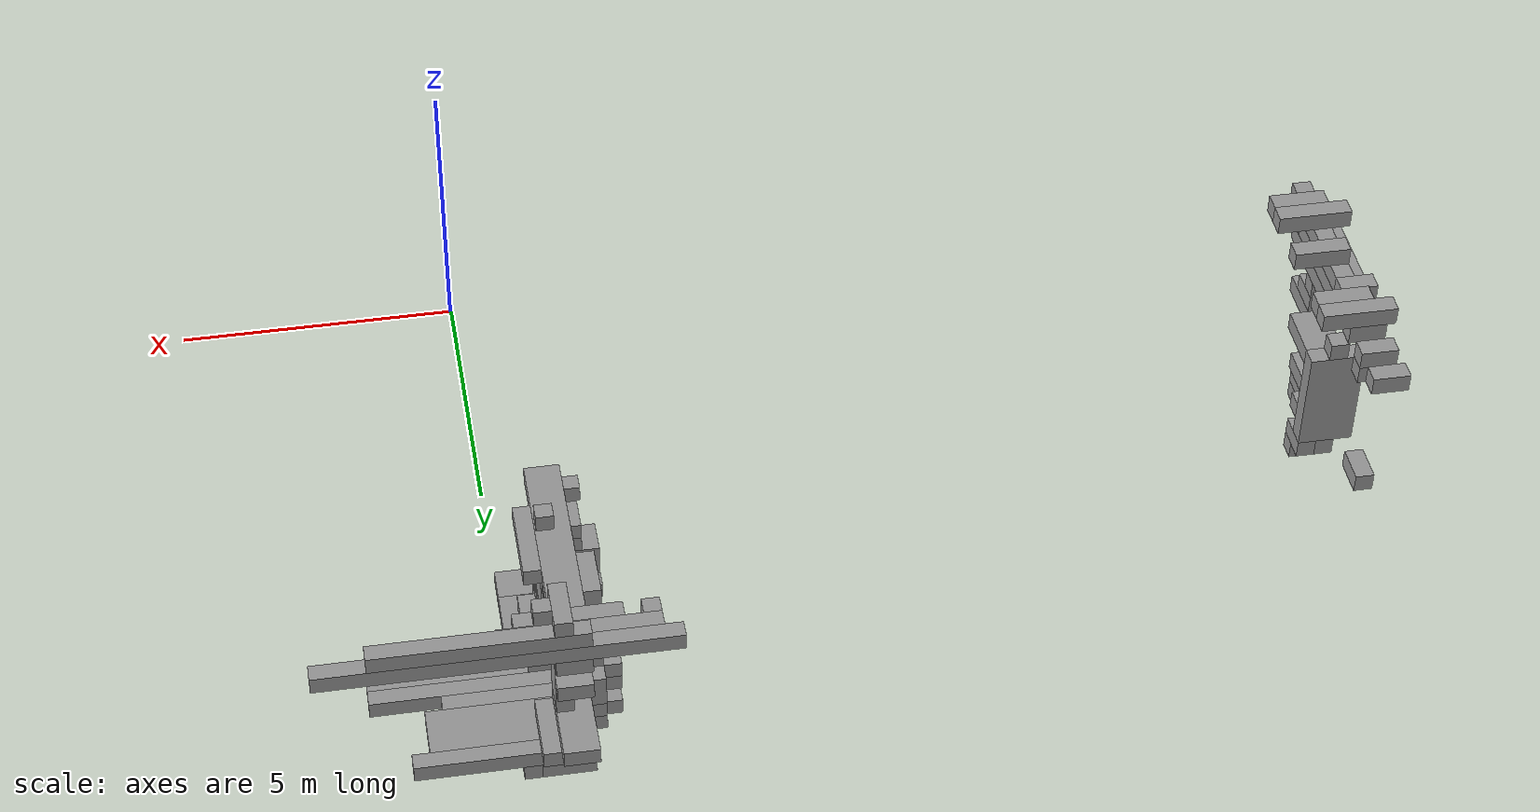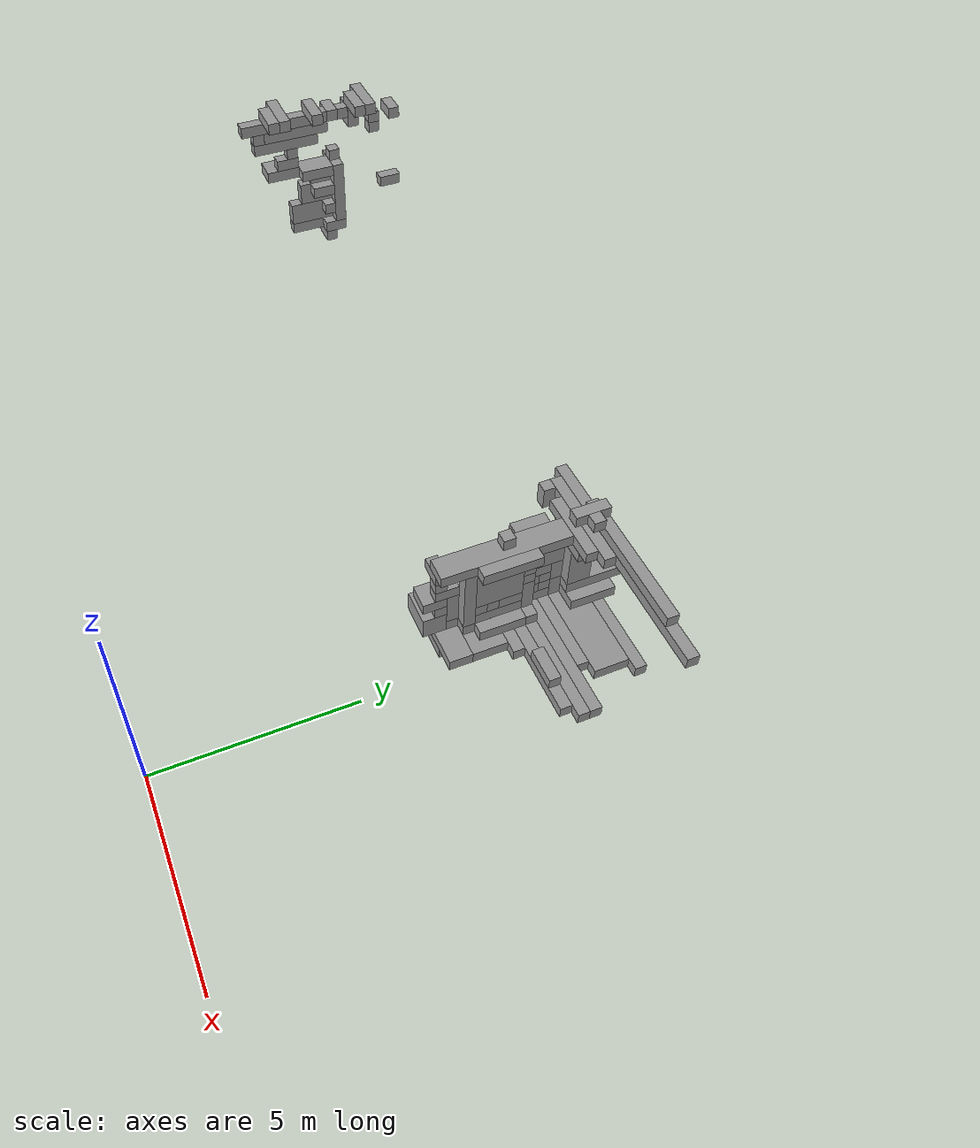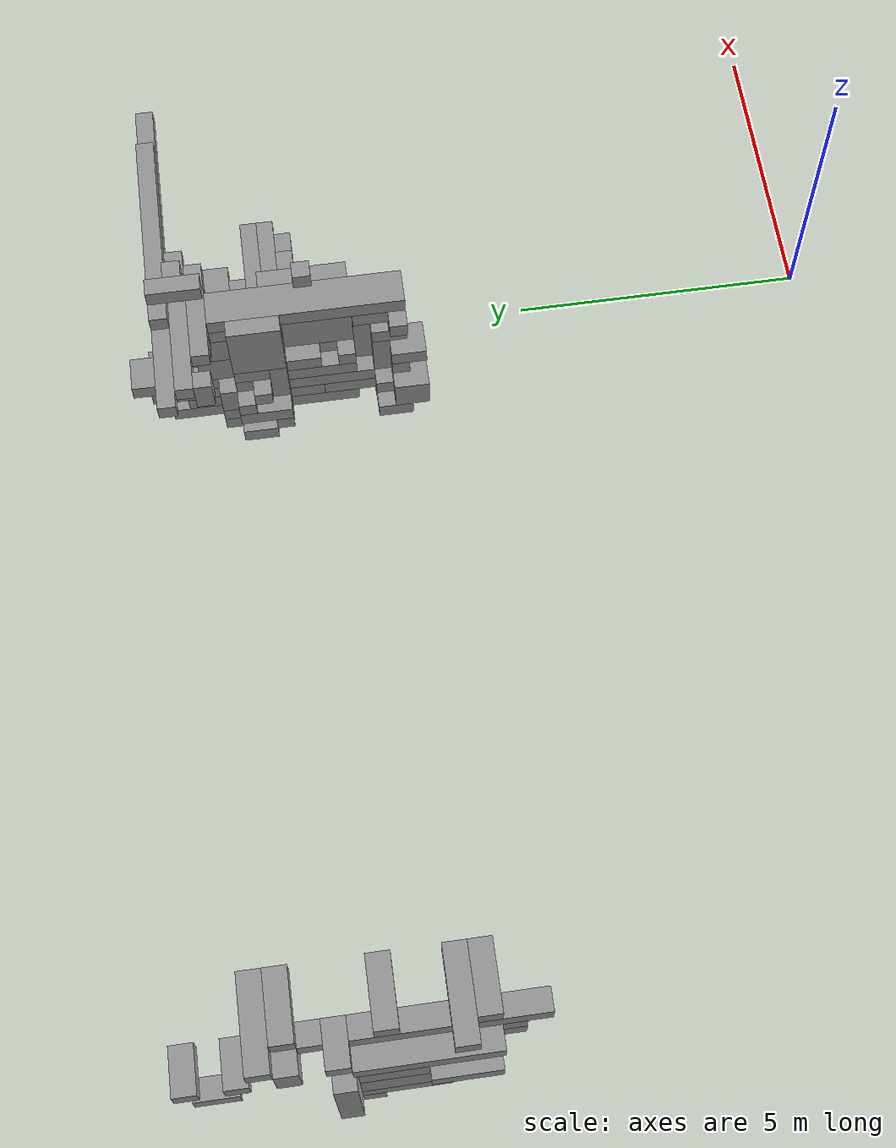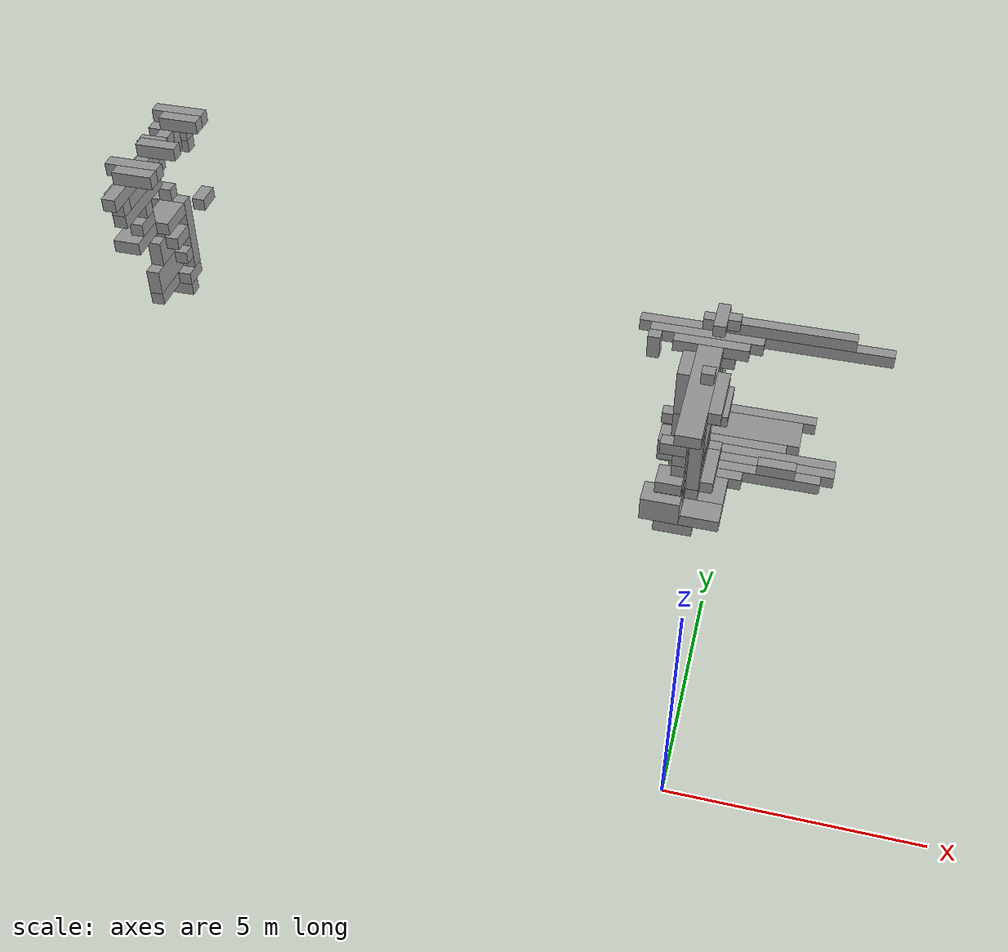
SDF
<sdf version="1.6">
 <world name="bt_world">
  <include><uri>model://sun</uri></include>
  <model name="obstacle_1363">
   <static>true</static>
   <pose>-13.799999999999999 7.949999999999999 5.25 0 0 0</pose>
   <link name="link">
    <collision name="collision">
     <geometry><box><size>0.6 0.8999999999999999 0.3</size></box></geometry>
    </collision>
    <visual name="visual">
     <geometry><box><size>0.6 0.8999999999999999 0.3</size></box></geometry>
     <material><ambient>0.5 0.5 0.5 1</ambient><diffuse>0.6 0.6 0.6 1</diffuse></material>
    </visual>
   </link>
  </model>
  <model name="obstacle_1364">
   <static>true</static>
   <pose>-13.799999999999999 8.4 6.45 0 0 0</pose>
   <link name="link">
    <collision name="collision">
     <geometry><box><size>0.6 1.7999999999999998 0.3</size></box></geometry>
    </collision>
    <visual name="visual">
     <geometry><box><size>0.6 1.7999999999999998 0.3</size></box></geometry>
     <material><ambient>0.5 0.5 0.5 1</ambient><diffuse>0.6 0.6 0.6 1</diffuse></material>
    </visual>
   </link>
  </model>
  <model name="obstacle_1368">
   <static>true</static>
   <pose>-13.5 7.949999999999999 7.05 0 0 0</pose>
   <link name="link">
    <collision name="collision"><geometry><box><size>1.2 0.3 0.3</size></box></geometry></collision>
    <visual name="visual">
     <geometry><box><size>1.2 0.3 0.3</size></box></geometry>
     <material><ambient>0.5 0.5 0.5 1</ambient><diffuse>0.6 0.6 0.6 1</diffuse></material>
    </visual>
   </link>
  </model>
  <model name="obstacle_1370">
   <static>true</static>
   <pose>-13.65 9.45 4.5 0 0 0</pose>
   <link name="link">
    <collision name="collision">
     <geometry><box><size>0.8999999999999999 0.3 1.7999999999999998</size></box></geometry>
    </collision>
    <visual name="visual">
     <geometry><box><size>0.8999999999999999 0.3 1.7999999999999998</size></box></geometry>
     <material><ambient>0.5 0.5 0.5 1</ambient><diffuse>0.6 0.6 0.6 1</diffuse></material>
    </visual>
   </link>
  </model>
  <model name="obstacle_1371">
   <static>true</static>
   <pose>-13.799999999999999 9.45 6.75 0 0 0</pose>
   <link name="link">
    <collision name="collision"><geometry><box><size>0.6 0.3 0.3</size></box></geometry></collision>
    <visual name="visual">
     <geometry><box><size>0.6 0.3 0.3</size></box></geometry>
     <material><ambient>0.5 0.5 0.5 1</ambient><diffuse>0.6 0.6 0.6 1</diffuse></material>
    </visual>
   </link>
  </model>
  <model name="obstacle_1374">
   <static>true</static>
   <pose>-13.799999999999999 10.049999999999999 6.6 0 0 0</pose>
   <link name="link">
    <collision name="collision"><geometry><box><size>0.6 0.3 0.6</size></box></geometry></collision>
    <visual name="visual">
     <geometry><box><size>0.6 0.3 0.6</size></box></geometry>
     <material><ambient>0.5 0.5 0.5 1</ambient><diffuse>0.6 0.6 0.6 1</diffuse></material>
    </visual>
   </link>
  </model>
  <model name="obstacle_1379">
   <static>true</static>
   <pose>-13.5 10.35 7.05 0 0 0</pose>
   <link name="link">
    <collision name="collision"><geometry><box><size>1.2 0.3 0.3</size></box></geometry></collision>
    <visual name="visual">
     <geometry><box><size>1.2 0.3 0.3</size></box></geometry>
     <material><ambient>0.5 0.5 0.5 1</ambient><diffuse>0.6 0.6 0.6 1</diffuse></material>
    </visual>
   </link>
  </model>
  <model name="obstacle_1381">
   <static>true</static>
   <pose>-13.799999999999999 10.65 6.45 0 0 0</pose>
   <link name="link">
    <collision name="collision"><geometry><box><size>0.6 0.3 0.3</size></box></geometry></collision>
    <visual name="visual">
     <geometry><box><size>0.6 0.3 0.3</size></box></geometry>
     <material><ambient>0.5 0.5 0.5 1</ambient><diffuse>0.6 0.6 0.6 1</diffuse></material>
    </visual>
   </link>
  </model>
  <model name="obstacle_1382">
   <static>true</static>
   <pose>-13.799999999999999 11.25 6.45 0 0 0</pose>
   <link name="link">
    <collision name="collision"><geometry><box><size>0.6 0.3 0.3</size></box></geometry></collision>
    <visual name="visual">
     <geometry><box><size>0.6 0.3 0.3</size></box></geometry>
     <material><ambient>0.5 0.5 0.5 1</ambient><diffuse>0.6 0.6 0.6 1</diffuse></material>
    </visual>
   </link>
  </model>
  <model name="obstacle_1455">
   <static>true</static>
   <pose>-13.65 8.1 6.75 0 0 0</pose>
   <link name="link">
    <collision name="collision"><geometry><box><size>0.3 2.4 0.3</size></box></geometry></collision>
    <visual name="visual">
     <geometry><box><size>0.3 2.4 0.3</size></box></geometry>
     <material><ambient>0.5 0.5 0.5 1</ambient><diffuse>0.6 0.6 0.6 1</diffuse></material>
    </visual>
   </link>
  </model>
  <model name="obstacle_1456">
   <static>true</static>
   <pose>-13.65 8.1 6.1499999999999995 0 0 0</pose>
   <link name="link">
    <collision name="collision">
     <geometry><box><size>0.3 1.7999999999999998 0.3</size></box></geometry>
    </collision>
    <visual name="visual">
     <geometry><box><size>0.3 1.7999999999999998 0.3</size></box></geometry>
     <material><ambient>0.5 0.5 0.5 1</ambient><diffuse>0.6 0.6 0.6 1</diffuse></material>
    </visual>
   </link>
  </model>
  <model name="obstacle_1457">
   <static>true</static>
   <pose>-13.65 7.35 6.45 0 0 0</pose>
   <link name="link">
    <collision name="collision"><geometry><box><size>0.3 0.3 0.3</size></box></geometry></collision>
    <visual name="visual">
     <geometry><box><size>0.3 0.3 0.3</size></box></geometry>
     <material><ambient>0.5 0.5 0.5 1</ambient><diffuse>0.6 0.6 0.6 1</diffuse></material>
    </visual>
   </link>
  </model>
  <model name="obstacle_1458">
   <static>true</static>
   <pose>-13.35 7.6499999999999995 7.05 0 0 0</pose>
   <link name="link">
    <collision name="collision">
     <geometry><box><size>0.8999999999999999 0.3 0.3</size></box></geometry>
    </collision>
    <visual name="visual">
     <geometry><box><size>0.8999999999999999 0.3 0.3</size></box></geometry>
     <material><ambient>0.5 0.5 0.5 1</ambient><diffuse>0.6 0.6 0.6 1</diffuse></material>
    </visual>
   </link>
  </model>
  <model name="obstacle_1459">
   <static>true</static>
   <pose>-13.65 8.1 5.55 0 0 0</pose>
   <link name="link">
    <collision name="collision"><geometry><box><size>0.3 0.6 0.3</size></box></geometry></collision>
    <visual name="visual">
     <geometry><box><size>0.3 0.6 0.3</size></box></geometry>
     <material><ambient>0.5 0.5 0.5 1</ambient><diffuse>0.6 0.6 0.6 1</diffuse></material>
    </visual>
   </link>
  </model>
  <model name="obstacle_1460">
   <static>true</static>
   <pose>-13.65 8.85 3.4499999999999997 0 0 0</pose>
   <link name="link">
    <collision name="collision"><geometry><box><size>0.3 1.5 0.3</size></box></geometry></collision>
    <visual name="visual">
     <geometry><box><size>0.3 1.5 0.3</size></box></geometry>
     <material><ambient>0.5 0.5 0.5 1</ambient><diffuse>0.6 0.6 0.6 1</diffuse></material>
    </visual>
   </link>
  </model>
  <model name="obstacle_1461">
   <static>true</static>
   <pose>-13.65 8.7 3.9 0 0 0</pose>
   <link name="link">
    <collision name="collision"><geometry><box><size>0.3 1.2 0.6</size></box></geometry></collision>
    <visual name="visual">
     <geometry><box><size>0.3 1.2 0.6</size></box></geometry>
     <material><ambient>0.5 0.5 0.5 1</ambient><diffuse>0.6 0.6 0.6 1</diffuse></material>
    </visual>
   </link>
  </model>
  <model name="obstacle_1462">
   <static>true</static>
   <pose>-13.65 8.25 5.85 0 0 0</pose>
   <link name="link">
    <collision name="collision"><geometry><box><size>0.3 0.3 0.3</size></box></geometry></collision>
    <visual name="visual">
     <geometry><box><size>0.3 0.3 0.3</size></box></geometry>
     <material><ambient>0.5 0.5 0.5 1</ambient><diffuse>0.6 0.6 0.6 1</diffuse></material>
    </visual>
   </link>
  </model>
  <model name="obstacle_1463">
   <static>true</static>
   <pose>-13.65 8.85 4.5 0 0 0</pose>
   <link name="link">
    <collision name="collision">
     <geometry><box><size>0.3 0.8999999999999999 0.6</size></box></geometry>
    </collision>
    <visual name="visual">
     <geometry><box><size>0.3 0.8999999999999999 0.6</size></box></geometry>
     <material><ambient>0.5 0.5 0.5 1</ambient><diffuse>0.6 0.6 0.6 1</diffuse></material>
    </visual>
   </link>
  </model>
  <model name="obstacle_1464">
   <static>true</static>
   <pose>-13.5 8.85 5.25 0 0 0</pose>
   <link name="link">
    <collision name="collision">
     <geometry><box><size>0.6 0.8999999999999999 0.3</size></box></geometry>
    </collision>
    <visual name="visual">
     <geometry><box><size>0.6 0.8999999999999999 0.3</size></box></geometry>
     <material><ambient>0.5 0.5 0.5 1</ambient><diffuse>0.6 0.6 0.6 1</diffuse></material>
    </visual>
   </link>
  </model>
  <model name="obstacle_1465">
   <static>true</static>
   <pose>-13.65 9.0 4.95 0 0 0</pose>
   <link name="link">
    <collision name="collision"><geometry><box><size>0.3 0.6 0.3</size></box></geometry></collision>
    <visual name="visual">
     <geometry><box><size>0.3 0.6 0.3</size></box></geometry>
     <material><ambient>0.5 0.5 0.5 1</ambient><diffuse>0.6 0.6 0.6 1</diffuse></material>
    </visual>
   </link>
  </model>
  <model name="obstacle_1466">
   <static>true</static>
   <pose>-13.35 8.85 7.05 0 0 0</pose>
   <link name="link">
    <collision name="collision">
     <geometry><box><size>0.8999999999999999 0.3 0.3</size></box></geometry>
    </collision>
    <visual name="visual">
     <geometry><box><size>0.8999999999999999 0.3 0.3</size></box></geometry>
     <material><ambient>0.5 0.5 0.5 1</ambient><diffuse>0.6 0.6 0.6 1</diffuse></material>
    </visual>
   </link>
  </model>
  <model name="obstacle_1467">
   <static>true</static>
   <pose>-13.5 9.15 3.15 0 0 0</pose>
   <link name="link">
    <collision name="collision"><geometry><box><size>0.6 0.3 0.3</size></box></geometry></collision>
    <visual name="visual">
     <geometry><box><size>0.6 0.3 0.3</size></box></geometry>
     <material><ambient>0.5 0.5 0.5 1</ambient><diffuse>0.6 0.6 0.6 1</diffuse></material>
    </visual>
   </link>
  </model>
  <model name="obstacle_1468">
   <static>true</static>
   <pose>-13.65 9.45 5.55 0 0 0</pose>
   <link name="link">
    <collision name="collision"><geometry><box><size>0.3 0.3 0.3</size></box></geometry></collision>
    <visual name="visual">
     <geometry><box><size>0.3 0.3 0.3</size></box></geometry>
     <material><ambient>0.5 0.5 0.5 1</ambient><diffuse>0.6 0.6 0.6 1</diffuse></material>
    </visual>
   </link>
  </model>
  <model name="obstacle_1469">
   <static>true</static>
   <pose>-13.65 9.75 6.75 0 0 0</pose>
   <link name="link">
    <collision name="collision"><geometry><box><size>0.3 0.3 0.3</size></box></geometry></collision>
    <visual name="visual">
     <geometry><box><size>0.3 0.3 0.3</size></box></geometry>
     <material><ambient>0.5 0.5 0.5 1</ambient><diffuse>0.6 0.6 0.6 1</diffuse></material>
    </visual>
   </link>
  </model>
  <model name="obstacle_1470">
   <static>true</static>
   <pose>-13.35 10.049999999999999 7.05 0 0 0</pose>
   <link name="link">
    <collision name="collision">
     <geometry><box><size>0.8999999999999999 0.3 0.3</size></box></geometry>
    </collision>
    <visual name="visual">
     <geometry><box><size>0.8999999999999999 0.3 0.3</size></box></geometry>
     <material><ambient>0.5 0.5 0.5 1</ambient><diffuse>0.6 0.6 0.6 1</diffuse></material>
    </visual>
   </link>
  </model>
  <model name="obstacle_1471">
   <static>true</static>
   <pose>-13.65 10.65 6.1499999999999995 0 0 0</pose>
   <link name="link">
    <collision name="collision"><geometry><box><size>0.3 0.3 0.3</size></box></geometry></collision>
    <visual name="visual">
     <geometry><box><size>0.3 0.3 0.3</size></box></geometry>
     <material><ambient>0.5 0.5 0.5 1</ambient><diffuse>0.6 0.6 0.6 1</diffuse></material>
    </visual>
   </link>
  </model>
  <model name="obstacle_1472">
   <static>true</static>
   <pose>-13.65 11.1 4.35 0 0 0</pose>
   <link name="link">
    <collision name="collision"><geometry><box><size>0.3 0.6 0.3</size></box></geometry></collision>
    <visual name="visual">
     <geometry><box><size>0.3 0.6 0.3</size></box></geometry>
     <material><ambient>0.5 0.5 0.5 1</ambient><diffuse>0.6 0.6 0.6 1</diffuse></material>
    </visual>
   </link>
  </model>
  <model name="obstacle_1512">
   <static>true</static>
   <pose>-13.35 9.0 4.6499999999999995 0 0 0</pose>
   <link name="link">
    <collision name="collision"><geometry><box><size>0.3 0.6 0.3</size></box></geometry></collision>
    <visual name="visual">
     <geometry><box><size>0.3 0.6 0.3</size></box></geometry>
     <material><ambient>0.5 0.5 0.5 1</ambient><diffuse>0.6 0.6 0.6 1</diffuse></material>
    </visual>
   </link>
  </model>
  <model name="obstacle_1513">
   <static>true</static>
   <pose>-13.35 9.299999999999999 3.4499999999999997 0 0 0</pose>
   <link name="link">
    <collision name="collision"><geometry><box><size>0.3 0.6 0.3</size></box></geometry></collision>
    <visual name="visual">
     <geometry><box><size>0.3 0.6 0.3</size></box></geometry>
     <material><ambient>0.5 0.5 0.5 1</ambient><diffuse>0.6 0.6 0.6 1</diffuse></material>
    </visual>
   </link>
  </model>
  <model name="obstacle_1514">
   <static>true</static>
   <pose>-13.35 9.15 4.05 0 0 0</pose>
   <link name="link">
    <collision name="collision"><geometry><box><size>0.3 0.3 0.3</size></box></geometry></collision>
    <visual name="visual">
     <geometry><box><size>0.3 0.3 0.3</size></box></geometry>
     <material><ambient>0.5 0.5 0.5 1</ambient><diffuse>0.6 0.6 0.6 1</diffuse></material>
    </visual>
   </link>
  </model>
  <model name="obstacle_1870">
   <static>true</static>
   <pose>0.3 11.25 2.55 0 0 0</pose>
   <link name="link">
    <collision name="collision"><geometry><box><size>6.0 0.3 0.3</size></box></geometry></collision>
    <visual name="visual">
     <geometry><box><size>6.0 0.3 0.3</size></box></geometry>
     <material><ambient>0.5 0.5 0.5 1</ambient><diffuse>0.6 0.6 0.6 1</diffuse></material>
    </visual>
   </link>
  </model>
  <model name="obstacle_1884">
   <static>true</static>
   <pose>-2.25 10.65 2.4 0 0 0</pose>
   <link name="link">
    <collision name="collision"><geometry><box><size>0.3 0.3 0.6</size></box></geometry></collision>
    <visual name="visual">
     <geometry><box><size>0.3 0.3 0.6</size></box></geometry>
     <material><ambient>0.5 0.5 0.5 1</ambient><diffuse>0.6 0.6 0.6 1</diffuse></material>
    </visual>
   </link>
  </model>
  <model name="obstacle_1885">
   <static>true</static>
   <pose>-1.05 10.95 2.55 0 0 0</pose>
   <link name="link">
    <collision name="collision">
     <geometry><box><size>2.6999999999999997 0.3 0.3</size></box></geometry>
    </collision>
    <visual name="visual">
     <geometry><box><size>2.6999999999999997 0.3 0.3</size></box></geometry>
     <material><ambient>0.5 0.5 0.5 1</ambient><diffuse>0.6 0.6 0.6 1</diffuse></material>
    </visual>
   </link>
  </model>
  <model name="obstacle_1903">
   <static>true</static>
   <pose>-1.3499999999999999 7.199999999999999 0.6 0 0 0</pose>
   <link name="link">
    <collision name="collision">
     <geometry><box><size>0.8999999999999999 0.6 0.6</size></box></geometry>
    </collision>
    <visual name="visual">
     <geometry><box><size>0.8999999999999999 0.6 0.6</size></box></geometry>
     <material><ambient>0.5 0.5 0.5 1</ambient><diffuse>0.6 0.6 0.6 1</diffuse></material>
    </visual>
   </link>
  </model>
  <model name="obstacle_1906">
   <static>true</static>
   <pose>-0.8999999999999999 7.5 0.15 0 0 0</pose>
   <link name="link">
    <collision name="collision">
     <geometry><box><size>1.7999999999999998 0.6 0.3</size></box></geometry>
    </collision>
    <visual name="visual">
     <geometry><box><size>1.7999999999999998 0.6 0.3</size></box></geometry>
     <material><ambient>0.5 0.5 0.5 1</ambient><diffuse>0.6 0.6 0.6 1</diffuse></material>
    </visual>
   </link>
  </model>
  <model name="obstacle_1907">
   <static>true</static>
   <pose>0.3 9.45 0.15 0 0 0</pose>
   <link name="link">
    <collision name="collision"><geometry><box><size>4.2 0.3 0.3</size></box></geometry></collision>
    <visual name="visual">
     <geometry><box><size>4.2 0.3 0.3</size></box></geometry>
     <material><ambient>0.5 0.5 0.5 1</ambient><diffuse>0.6 0.6 0.6 1</diffuse></material>
    </visual>
   </link>
  </model>
  <model name="obstacle_1908">
   <static>true</static>
   <pose>-1.5 9.75 0.44999999999999996 0 0 0</pose>
   <link name="link">
    <collision name="collision">
     <geometry><box><size>0.6 0.8999999999999999 0.3</size></box></geometry>
    </collision>
    <visual name="visual">
     <geometry><box><size>0.6 0.8999999999999999 0.3</size></box></geometry>
     <material><ambient>0.5 0.5 0.5 1</ambient><diffuse>0.6 0.6 0.6 1</diffuse></material>
    </visual>
   </link>
  </model>
  <model name="obstacle_1909">
   <static>true</static>
   <pose>-1.05 9.9 -0.15 0 0 0</pose>
   <link name="link">
    <collision name="collision"><geometry><box><size>1.5 0.6 0.3</size></box></geometry></collision>
    <visual name="visual">
     <geometry><box><size>1.5 0.6 0.3</size></box></geometry>
     <material><ambient>0.5 0.5 0.5 1</ambient><diffuse>0.6 0.6 0.6 1</diffuse></material>
    </visual>
   </link>
  </model>
  <model name="obstacle_1910">
   <static>true</static>
   <pose>-1.3499999999999999 9.75 1.05 0 0 0</pose>
   <link name="link">
    <collision name="collision">
     <geometry><box><size>0.8999999999999999 0.3 0.3</size></box></geometry>
    </collision>
    <visual name="visual">
     <geometry><box><size>0.8999999999999999 0.3 0.3</size></box></geometry>
     <material><ambient>0.5 0.5 0.5 1</ambient><diffuse>0.6 0.6 0.6 1</diffuse></material>
    </visual>
   </link>
  </model>
  <model name="obstacle_1911">
   <static>true</static>
   <pose>-1.3499999999999999 10.049999999999999 0.75 0 0 0</pose>
   <link name="link">
    <collision name="collision">
     <geometry><box><size>0.8999999999999999 0.3 0.3</size></box></geometry>
    </collision>
    <visual name="visual">
     <geometry><box><size>0.8999999999999999 0.3 0.3</size></box></geometry>
     <material><ambient>0.5 0.5 0.5 1</ambient><diffuse>0.6 0.6 0.6 1</diffuse></material>
    </visual>
   </link>
  </model>
  <model name="obstacle_1912">
   <static>true</static>
   <pose>-0.8999999999999999 10.65 2.55 0 0 0</pose>
   <link name="link">
    <collision name="collision">
     <geometry><box><size>1.7999999999999998 0.3 0.3</size></box></geometry>
    </collision>
    <visual name="visual">
     <geometry><box><size>1.7999999999999998 0.3 0.3</size></box></geometry>
     <material><ambient>0.5 0.5 0.5 1</ambient><diffuse>0.6 0.6 0.6 1</diffuse></material>
    </visual>
   </link>
  </model>
  <model name="obstacle_1940">
   <static>true</static>
   <pose>-1.2 7.199999999999999 1.3499999999999999 0 0 0</pose>
   <link name="link">
    <collision name="collision"><geometry><box><size>0.6 0.6 0.3</size></box></geometry></collision>
    <visual name="visual">
     <geometry><box><size>0.6 0.6 0.3</size></box></geometry>
     <material><ambient>0.5 0.5 0.5 1</ambient><diffuse>0.6 0.6 0.6 1</diffuse></material>
    </visual>
   </link>
  </model>
  <model name="obstacle_1944">
   <static>true</static>
   <pose>-1.05 7.35 -0.15 0 0 0</pose>
   <link name="link">
    <collision name="collision">
     <geometry><box><size>0.8999999999999999 0.3 0.3</size></box></geometry>
    </collision>
    <visual name="visual">
     <geometry><box><size>0.8999999999999999 0.3 0.3</size></box></geometry>
     <material><ambient>0.5 0.5 0.5 1</ambient><diffuse>0.6 0.6 0.6 1</diffuse></material>
    </visual>
   </link>
  </model>
  <model name="obstacle_1945">
   <static>true</static>
   <pose>-1.2 7.35 1.05 0 0 0</pose>
   <link name="link">
    <collision name="collision"><geometry><box><size>0.6 0.3 0.3</size></box></geometry></collision>
    <visual name="visual">
     <geometry><box><size>0.6 0.3 0.3</size></box></geometry>
     <material><ambient>0.5 0.5 0.5 1</ambient><diffuse>0.6 0.6 0.6 1</diffuse></material>
    </visual>
   </link>
  </model>
  <model name="obstacle_1946">
   <static>true</static>
   <pose>-1.2 7.35 2.25 0 0 0</pose>
   <link name="link">
    <collision name="collision"><geometry><box><size>0.6 0.3 0.3</size></box></geometry></collision>
    <visual name="visual">
     <geometry><box><size>0.6 0.3 0.3</size></box></geometry>
     <material><ambient>0.5 0.5 0.5 1</ambient><diffuse>0.6 0.6 0.6 1</diffuse></material>
    </visual>
   </link>
  </model>
  <model name="obstacle_1947">
   <static>true</static>
   <pose>-1.2 7.6499999999999995 0.44999999999999996 0 0 0</pose>
   <link name="link">
    <collision name="collision"><geometry><box><size>0.6 0.3 0.3</size></box></geometry></collision>
    <visual name="visual">
     <geometry><box><size>0.6 0.3 0.3</size></box></geometry>
     <material><ambient>0.5 0.5 0.5 1</ambient><diffuse>0.6 0.6 0.6 1</diffuse></material>
    </visual>
   </link>
  </model>
  <model name="obstacle_1948">
   <static>true</static>
   <pose>-0.75 9.45 -0.15 0 0 0</pose>
   <link name="link">
    <collision name="collision"><geometry><box><size>1.5 0.3 0.3</size></box></geometry></collision>
    <visual name="visual">
     <geometry><box><size>1.5 0.3 0.3</size></box></geometry>
     <material><ambient>0.5 0.5 0.5 1</ambient><diffuse>0.6 0.6 0.6 1</diffuse></material>
    </visual>
   </link>
  </model>
  <model name="obstacle_1949">
   <static>true</static>
   <pose>-1.05 9.45 1.05 0 0 0</pose>
   <link name="link">
    <collision name="collision">
     <geometry><box><size>0.8999999999999999 0.3 0.8999999999999999</size></box></geometry>
    </collision>
    <visual name="visual">
     <geometry><box><size>0.8999999999999999 0.3 0.8999999999999999</size></box></geometry>
     <material><ambient>0.5 0.5 0.5 1</ambient><diffuse>0.6 0.6 0.6 1</diffuse></material>
    </visual>
   </link>
  </model>
  <model name="obstacle_1950">
   <static>true</static>
   <pose>-1.3499999999999999 9.75 2.1 0 0 0</pose>
   <link name="link">
    <collision name="collision">
     <geometry><box><size>0.3 0.8999999999999999 1.2</size></box></geometry>
    </collision>
    <visual name="visual">
     <geometry><box><size>0.3 0.8999999999999999 1.2</size></box></geometry>
     <material><ambient>0.5 0.5 0.5 1</ambient><diffuse>0.6 0.6 0.6 1</diffuse></material>
    </visual>
   </link>
  </model>
  <model name="obstacle_1951">
   <static>true</static>
   <pose>0.44999999999999996 9.75 0.15 0 0 0</pose>
   <link name="link">
    <collision name="collision"><geometry><box><size>3.9 0.3 0.3</size></box></geometry></collision>
    <visual name="visual">
     <geometry><box><size>3.9 0.3 0.3</size></box></geometry>
     <material><ambient>0.5 0.5 0.5 1</ambient><diffuse>0.6 0.6 0.6 1</diffuse></material>
    </visual>
   </link>
  </model>
  <model name="obstacle_1952">
   <static>true</static>
   <pose>-1.2 9.75 0.75 0 0 0</pose>
   <link name="link">
    <collision name="collision"><geometry><box><size>0.6 0.3 0.3</size></box></geometry></collision>
    <visual name="visual">
     <geometry><box><size>0.6 0.3 0.3</size></box></geometry>
     <material><ambient>0.5 0.5 0.5 1</ambient><diffuse>0.6 0.6 0.6 1</diffuse></material>
    </visual>
   </link>
  </model>
  <model name="obstacle_1953">
   <static>true</static>
   <pose>-1.2 9.9 1.3499999999999999 0 0 0</pose>
   <link name="link">
    <collision name="collision"><geometry><box><size>0.6 0.6 0.3</size></box></geometry></collision>
    <visual name="visual">
     <geometry><box><size>0.6 0.6 0.3</size></box></geometry>
     <material><ambient>0.5 0.5 0.5 1</ambient><diffuse>0.6 0.6 0.6 1</diffuse></material>
    </visual>
   </link>
  </model>
  <model name="obstacle_1954">
   <static>true</static>
   <pose>-1.3499999999999999 10.2 0.15 0 0 0</pose>
   <link name="link">
    <collision name="collision"><geometry><box><size>0.3 0.6 0.3</size></box></geometry></collision>
    <visual name="visual">
     <geometry><box><size>0.3 0.6 0.3</size></box></geometry>
     <material><ambient>0.5 0.5 0.5 1</ambient><diffuse>0.6 0.6 0.6 1</diffuse></material>
    </visual>
   </link>
  </model>
  <model name="obstacle_1955">
   <static>true</static>
   <pose>-1.2 10.049999999999999 1.05 0 0 0</pose>
   <link name="link">
    <collision name="collision"><geometry><box><size>0.6 0.3 0.3</size></box></geometry></collision>
    <visual name="visual">
     <geometry><box><size>0.6 0.3 0.3</size></box></geometry>
     <material><ambient>0.5 0.5 0.5 1</ambient><diffuse>0.6 0.6 0.6 1</diffuse></material>
    </visual>
   </link>
  </model>
  <model name="obstacle_1956">
   <static>true</static>
   <pose>-0.8999999999999999 10.35 -0.15 0 0 0</pose>
   <link name="link">
    <collision name="collision"><geometry><box><size>1.2 0.3 0.3</size></box></geometry></collision>
    <visual name="visual">
     <geometry><box><size>1.2 0.3 0.3</size></box></geometry>
     <material><ambient>0.5 0.5 0.5 1</ambient><diffuse>0.6 0.6 0.6 1</diffuse></material>
    </visual>
   </link>
  </model>
  <model name="obstacle_1957">
   <static>true</static>
   <pose>-1.2 10.35 0.6 0 0 0</pose>
   <link name="link">
    <collision name="collision"><geometry><box><size>0.6 0.3 0.6</size></box></geometry></collision>
    <visual name="visual">
     <geometry><box><size>0.6 0.3 0.6</size></box></geometry>
     <material><ambient>0.5 0.5 0.5 1</ambient><diffuse>0.6 0.6 0.6 1</diffuse></material>
    </visual>
   </link>
  </model>
  <model name="obstacle_1958">
   <static>true</static>
   <pose>-0.8999999999999999 10.65 2.25 0 0 0</pose>
   <link name="link">
    <collision name="collision"><geometry><box><size>1.2 0.3 0.3</size></box></geometry></collision>
    <visual name="visual">
     <geometry><box><size>1.2 0.3 0.3</size></box></geometry>
     <material><ambient>0.5 0.5 0.5 1</ambient><diffuse>0.6 0.6 0.6 1</diffuse></material>
    </visual>
   </link>
  </model>
  <model name="obstacle_2007">
   <static>true</static>
   <pose>-1.05 7.5 1.65 0 0 0</pose>
   <link name="link">
    <collision name="collision"><geometry><box><size>0.3 0.6 0.3</size></box></geometry></collision>
    <visual name="visual">
     <geometry><box><size>0.3 0.6 0.3</size></box></geometry>
     <material><ambient>0.5 0.5 0.5 1</ambient><diffuse>0.6 0.6 0.6 1</diffuse></material>
    </visual>
   </link>
  </model>
  <model name="obstacle_2008">
   <static>true</static>
   <pose>-1.05 7.35 1.95 0 0 0</pose>
   <link name="link">
    <collision name="collision"><geometry><box><size>0.3 0.3 0.3</size></box></geometry></collision>
    <visual name="visual">
     <geometry><box><size>0.3 0.3 0.3</size></box></geometry>
     <material><ambient>0.5 0.5 0.5 1</ambient><diffuse>0.6 0.6 0.6 1</diffuse></material>
    </visual>
   </link>
  </model>
  <model name="obstacle_2009">
   <static>true</static>
   <pose>-0.8999999999999999 8.85 2.55 0 0 0</pose>
   <link name="link">
    <collision name="collision"><geometry><box><size>0.6 3.3 0.3</size></box></geometry></collision>
    <visual name="visual">
     <geometry><box><size>0.6 3.3 0.3</size></box></geometry>
     <material><ambient>0.5 0.5 0.5 1</ambient><diffuse>0.6 0.6 0.6 1</diffuse></material>
    </visual>
   </link>
  </model>
  <model name="obstacle_2010">
   <static>true</static>
   <pose>-1.05 7.6499999999999995 -0.15 0 0 0</pose>
   <link name="link">
    <collision name="collision"><geometry><box><size>0.3 0.3 0.3</size></box></geometry></collision>
    <visual name="visual">
     <geometry><box><size>0.3 0.3 0.3</size></box></geometry>
     <material><ambient>0.5 0.5 0.5 1</ambient><diffuse>0.6 0.6 0.6 1</diffuse></material>
    </visual>
   </link>
  </model>
  <model name="obstacle_2011">
   <static>true</static>
   <pose>-1.05 7.6499999999999995 1.05 0 0 0</pose>
   <link name="link">
    <collision name="collision">
     <geometry><box><size>0.3 0.3 0.8999999999999999</size></box></geometry>
    </collision>
    <visual name="visual">
     <geometry><box><size>0.3 0.3 0.8999999999999999</size></box></geometry>
     <material><ambient>0.5 0.5 0.5 1</ambient><diffuse>0.6 0.6 0.6 1</diffuse></material>
    </visual>
   </link>
  </model>
  <model name="obstacle_2012">
   <static>true</static>
   <pose>-1.05 7.8 2.25 0 0 0</pose>
   <link name="link">
    <collision name="collision"><geometry><box><size>0.3 0.6 0.3</size></box></geometry></collision>
    <visual name="visual">
     <geometry><box><size>0.3 0.6 0.3</size></box></geometry>
     <material><ambient>0.5 0.5 0.5 1</ambient><diffuse>0.6 0.6 0.6 1</diffuse></material>
    </visual>
   </link>
  </model>
  <model name="obstacle_2013">
   <static>true</static>
   <pose>-0.6 8.25 0.15 0 0 0</pose>
   <link name="link">
    <collision name="collision">
     <geometry><box><size>1.2 0.8999999999999999 0.3</size></box></geometry>
    </collision>
    <visual name="visual">
     <geometry><box><size>1.2 0.8999999999999999 0.3</size></box></geometry>
     <material><ambient>0.5 0.5 0.5 1</ambient><diffuse>0.6 0.6 0.6 1</diffuse></material>
    </visual>
   </link>
  </model>
  <model name="obstacle_2014">
   <static>true</static>
   <pose>-0.8999999999999999 8.549999999999999 0.44999999999999996 0 0 0</pose>
   <link name="link">
    <collision name="collision"><geometry><box><size>0.6 1.5 0.3</size></box></geometry></collision>
    <visual name="visual">
     <geometry><box><size>0.6 1.5 0.3</size></box></geometry>
     <material><ambient>0.5 0.5 0.5 1</ambient><diffuse>0.6 0.6 0.6 1</diffuse></material>
    </visual>
   </link>
  </model>
  <model name="obstacle_2015">
   <static>true</static>
   <pose>-0.75 8.7 -0.15 0 0 0</pose>
   <link name="link">
    <collision name="collision">
     <geometry><box><size>0.8999999999999999 1.2 0.3</size></box></geometry>
    </collision>
    <visual name="visual">
     <geometry><box><size>0.8999999999999999 1.2 0.3</size></box></geometry>
     <material><ambient>0.5 0.5 0.5 1</ambient><diffuse>0.6 0.6 0.6 1</diffuse></material>
    </visual>
   </link>
  </model>
  <model name="obstacle_2016">
   <static>true</static>
   <pose>-0.8999999999999999 8.7 0.75 0 0 0</pose>
   <link name="link">
    <collision name="collision"><geometry><box><size>0.6 1.2 0.3</size></box></geometry></collision>
    <visual name="visual">
     <geometry><box><size>0.6 1.2 0.3</size></box></geometry>
     <material><ambient>0.5 0.5 0.5 1</ambient><diffuse>0.6 0.6 0.6 1</diffuse></material>
    </visual>
   </link>
  </model>
  <model name="obstacle_2017">
   <static>true</static>
   <pose>-0.8999999999999999 8.25 1.05 0 0 0</pose>
   <link name="link">
    <collision name="collision"><geometry><box><size>0.6 0.3 0.3</size></box></geometry></collision>
    <visual name="visual">
     <geometry><box><size>0.6 0.3 0.3</size></box></geometry>
     <material><ambient>0.5 0.5 0.5 1</ambient><diffuse>0.6 0.6 0.6 1</diffuse></material>
    </visual>
   </link>
  </model>
  <model name="obstacle_2018">
   <static>true</static>
   <pose>-1.05 9.0 0.15 0 0 0</pose>
   <link name="link">
    <collision name="collision"><geometry><box><size>0.3 0.6 0.3</size></box></geometry></collision>
    <visual name="visual">
     <geometry><box><size>0.3 0.6 0.3</size></box></geometry>
     <material><ambient>0.5 0.5 0.5 1</ambient><diffuse>0.6 0.6 0.6 1</diffuse></material>
    </visual>
   </link>
  </model>
  <model name="obstacle_2019">
   <static>true</static>
   <pose>-0.8999999999999999 9.0 1.05 0 0 0</pose>
   <link name="link">
    <collision name="collision"><geometry><box><size>0.6 0.6 0.3</size></box></geometry></collision>
    <visual name="visual">
     <geometry><box><size>0.6 0.6 0.3</size></box></geometry>
     <material><ambient>0.5 0.5 0.5 1</ambient><diffuse>0.6 0.6 0.6 1</diffuse></material>
    </visual>
   </link>
  </model>
  <model name="obstacle_2020">
   <static>true</static>
   <pose>-0.8999999999999999 9.45 2.1 0 0 0</pose>
   <link name="link">
    <collision name="collision"><geometry><box><size>0.6 0.3 0.6</size></box></geometry></collision>
    <visual name="visual">
     <geometry><box><size>0.6 0.3 0.6</size></box></geometry>
     <material><ambient>0.5 0.5 0.5 1</ambient><diffuse>0.6 0.6 0.6 1</diffuse></material>
    </visual>
   </link>
  </model>
  <model name="obstacle_2021">
   <static>true</static>
   <pose>-1.05 9.9 0.44999999999999996 0 0 0</pose>
   <link name="link">
    <collision name="collision"><geometry><box><size>0.3 0.6 0.3</size></box></geometry></collision>
    <visual name="visual">
     <geometry><box><size>0.3 0.6 0.3</size></box></geometry>
     <material><ambient>0.5 0.5 0.5 1</ambient><diffuse>0.6 0.6 0.6 1</diffuse></material>
    </visual>
   </link>
  </model>
  <model name="obstacle_2022">
   <static>true</static>
   <pose>-1.05 10.2 1.7999999999999998 0 0 0</pose>
   <link name="link">
    <collision name="collision"><geometry><box><size>0.3 1.2 0.6</size></box></geometry></collision>
    <visual name="visual">
     <geometry><box><size>0.3 1.2 0.6</size></box></geometry>
     <material><ambient>0.5 0.5 0.5 1</ambient><diffuse>0.6 0.6 0.6 1</diffuse></material>
    </visual>
   </link>
  </model>
  <model name="obstacle_2023">
   <static>true</static>
   <pose>-1.05 10.049999999999999 2.25 0 0 0</pose>
   <link name="link">
    <collision name="collision">
     <geometry><box><size>0.3 0.8999999999999999 0.3</size></box></geometry>
    </collision>
    <visual name="visual">
     <geometry><box><size>0.3 0.8999999999999999 0.3</size></box></geometry>
     <material><ambient>0.5 0.5 0.5 1</ambient><diffuse>0.6 0.6 0.6 1</diffuse></material>
    </visual>
   </link>
  </model>
  <model name="obstacle_2024">
   <static>true</static>
   <pose>0.15 10.65 0.15 0 0 0</pose>
   <link name="link">
    <collision name="collision">
     <geometry><box><size>2.6999999999999997 0.8999999999999999 0.3</size></box></geometry>
    </collision>
    <visual name="visual">
     <geometry><box><size>2.6999999999999997 0.8999999999999999 0.3</size></box></geometry>
     <material><ambient>0.5 0.5 0.5 1</ambient><diffuse>0.6 0.6 0.6 1</diffuse></material>
    </visual>
   </link>
  </model>
  <model name="obstacle_2025">
   <static>true</static>
   <pose>-1.05 10.5 1.2 0 0 0</pose>
   <link name="link">
    <collision name="collision"><geometry><box><size>0.3 0.6 0.6</size></box></geometry></collision>
    <visual name="visual">
     <geometry><box><size>0.3 0.6 0.6</size></box></geometry>
     <material><ambient>0.5 0.5 0.5 1</ambient><diffuse>0.6 0.6 0.6 1</diffuse></material>
    </visual>
   </link>
  </model>
  <model name="obstacle_2026">
   <static>true</static>
   <pose>-0.75 10.95 -0.15 0 0 0</pose>
   <link name="link">
    <collision name="collision">
     <geometry><box><size>0.8999999999999999 0.8999999999999999 0.3</size></box></geometry>
    </collision>
    <visual name="visual">
     <geometry><box><size>0.8999999999999999 0.8999999999999999 0.3</size></box></geometry>
     <material><ambient>0.5 0.5 0.5 1</ambient><diffuse>0.6 0.6 0.6 1</diffuse></material>
    </visual>
   </link>
  </model>
  <model name="obstacle_2027">
   <static>true</static>
   <pose>-0.75 11.1 0.44999999999999996 0 0 0</pose>
   <link name="link">
    <collision name="collision">
     <geometry><box><size>0.8999999999999999 1.2 0.3</size></box></geometry>
    </collision>
    <visual name="visual">
     <geometry><box><size>0.8999999999999999 1.2 0.3</size></box></geometry>
     <material><ambient>0.5 0.5 0.5 1</ambient><diffuse>0.6 0.6 0.6 1</diffuse></material>
    </visual>
   </link>
  </model>
  <model name="obstacle_2028">
   <static>true</static>
   <pose>-0.8999999999999999 11.25 0.75 0 0 0</pose>
   <link name="link">
    <collision name="collision"><geometry><box><size>0.6 1.5 0.3</size></box></geometry></collision>
    <visual name="visual">
     <geometry><box><size>0.6 1.5 0.3</size></box></geometry>
     <material><ambient>0.5 0.5 0.5 1</ambient><diffuse>0.6 0.6 0.6 1</diffuse></material>
    </visual>
   </link>
  </model>
  <model name="obstacle_2034">
   <static>true</static>
   <pose>-0.8999999999999999 11.25 1.65 0 0 0</pose>
   <link name="link">
    <collision name="collision"><geometry><box><size>0.6 0.3 0.3</size></box></geometry></collision>
    <visual name="visual">
     <geometry><box><size>0.6 0.3 0.3</size></box></geometry>
     <material><ambient>0.5 0.5 0.5 1</ambient><diffuse>0.6 0.6 0.6 1</diffuse></material>
    </visual>
   </link>
  </model>
  <model name="obstacle_2035">
   <static>true</static>
   <pose>-0.8999999999999999 11.25 2.25 0 0 0</pose>
   <link name="link">
    <collision name="collision"><geometry><box><size>0.6 0.3 0.3</size></box></geometry></collision>
    <visual name="visual">
     <geometry><box><size>0.6 0.3 0.3</size></box></geometry>
     <material><ambient>0.5 0.5 0.5 1</ambient><diffuse>0.6 0.6 0.6 1</diffuse></material>
    </visual>
   </link>
  </model>
  <model name="obstacle_2036">
   <static>true</static>
   <pose>0.6 11.25 2.85 0 0 0</pose>
   <link name="link">
    <collision name="collision">
     <geometry><box><size>3.5999999999999996 0.3 0.3</size></box></geometry>
    </collision>
    <visual name="visual">
     <geometry><box><size>3.5999999999999996 0.3 0.3</size></box></geometry>
     <material><ambient>0.5 0.5 0.5 1</ambient><diffuse>0.6 0.6 0.6 1</diffuse></material>
    </visual>
   </link>
  </model>
  <model name="obstacle_2075">
   <static>true</static>
   <pose>-0.6 7.949999999999999 -0.15 0 0 0</pose>
   <link name="link">
    <collision name="collision"><geometry><box><size>0.6 0.3 0.3</size></box></geometry></collision>
    <visual name="visual">
     <geometry><box><size>0.6 0.3 0.3</size></box></geometry>
     <material><ambient>0.5 0.5 0.5 1</ambient><diffuse>0.6 0.6 0.6 1</diffuse></material>
    </visual>
   </link>
  </model>
  <model name="obstacle_2076">
   <static>true</static>
   <pose>-0.75 7.949999999999999 1.5 0 0 0</pose>
   <link name="link">
    <collision name="collision">
     <geometry><box><size>0.3 0.3 1.7999999999999998</size></box></geometry>
    </collision>
    <visual name="visual">
     <geometry><box><size>0.3 0.3 1.7999999999999998</size></box></geometry>
     <material><ambient>0.5 0.5 0.5 1</ambient><diffuse>0.6 0.6 0.6 1</diffuse></material>
    </visual>
   </link>
  </model>
  <model name="obstacle_2077">
   <static>true</static>
   <pose>-0.75 8.25 -0.44999999999999996 0 0 0</pose>
   <link name="link">
    <collision name="collision"><geometry><box><size>0.3 0.3 0.3</size></box></geometry></collision>
    <visual name="visual">
     <geometry><box><size>0.3 0.3 0.3</size></box></geometry>
     <material><ambient>0.5 0.5 0.5 1</ambient><diffuse>0.6 0.6 0.6 1</diffuse></material>
    </visual>
   </link>
  </model>
  <model name="obstacle_2078">
   <static>true</static>
   <pose>-0.75 8.7 1.7999999999999998 0 0 0</pose>
   <link name="link">
    <collision name="collision"><geometry><box><size>0.3 1.2 1.2</size></box></geometry></collision>
    <visual name="visual">
     <geometry><box><size>0.3 1.2 1.2</size></box></geometry>
     <material><ambient>0.5 0.5 0.5 1</ambient><diffuse>0.6 0.6 0.6 1</diffuse></material>
    </visual>
   </link>
  </model>
  <model name="obstacle_2079">
   <static>true</static>
   <pose>-0.75 8.549999999999999 1.05 0 0 0</pose>
   <link name="link">
    <collision name="collision"><geometry><box><size>0.3 0.3 0.3</size></box></geometry></collision>
    <visual name="visual">
     <geometry><box><size>0.3 0.3 0.3</size></box></geometry>
     <material><ambient>0.5 0.5 0.5 1</ambient><diffuse>0.6 0.6 0.6 1</diffuse></material>
    </visual>
   </link>
  </model>
  <model name="obstacle_2080">
   <static>true</static>
   <pose>-0.75 8.85 3.15 0 0 0</pose>
   <link name="link">
    <collision name="collision"><geometry><box><size>0.3 0.3 0.3</size></box></geometry></collision>
    <visual name="visual">
     <geometry><box><size>0.3 0.3 0.3</size></box></geometry>
     <material><ambient>0.5 0.5 0.5 1</ambient><diffuse>0.6 0.6 0.6 1</diffuse></material>
    </visual>
   </link>
  </model>
  <model name="obstacle_2081">
   <static>true</static>
   <pose>0.6 9.15 0.15 0 0 0</pose>
   <link name="link">
    <collision name="collision"><geometry><box><size>3.0 0.3 0.3</size></box></geometry></collision>
    <visual name="visual">
     <geometry><box><size>3.0 0.3 0.3</size></box></geometry>
     <material><ambient>0.5 0.5 0.5 1</ambient><diffuse>0.6 0.6 0.6 1</diffuse></material>
    </visual>
   </link>
  </model>
  <model name="obstacle_2082">
   <static>true</static>
   <pose>-0.6 9.45 0.44999999999999996 0 0 0</pose>
   <link name="link">
    <collision name="collision"><geometry><box><size>0.6 0.3 0.3</size></box></geometry></collision>
    <visual name="visual">
     <geometry><box><size>0.6 0.3 0.3</size></box></geometry>
     <material><ambient>0.5 0.5 0.5 1</ambient><diffuse>0.6 0.6 0.6 1</diffuse></material>
    </visual>
   </link>
  </model>
  <model name="obstacle_2083">
   <static>true</static>
   <pose>-0.75 9.45 1.65 0 0 0</pose>
   <link name="link">
    <collision name="collision"><geometry><box><size>0.3 0.3 0.3</size></box></geometry></collision>
    <visual name="visual">
     <geometry><box><size>0.3 0.3 0.3</size></box></geometry>
     <material><ambient>0.5 0.5 0.5 1</ambient><diffuse>0.6 0.6 0.6 1</diffuse></material>
    </visual>
   </link>
  </model>
  <model name="obstacle_2084">
   <static>true</static>
   <pose>0.15 10.049999999999999 0.15 0 0 0</pose>
   <link name="link">
    <collision name="collision"><geometry><box><size>2.1 0.3 0.3</size></box></geometry></collision>
    <visual name="visual">
     <geometry><box><size>2.1 0.3 0.3</size></box></geometry>
     <material><ambient>0.5 0.5 0.5 1</ambient><diffuse>0.6 0.6 0.6 1</diffuse></material>
    </visual>
   </link>
  </model>
  <model name="obstacle_2085">
   <static>true</static>
   <pose>-0.75 10.799999999999999 1.5 0 0 0</pose>
   <link name="link">
    <collision name="collision"><geometry><box><size>0.3 0.6 1.2</size></box></geometry></collision>
    <visual name="visual">
     <geometry><box><size>0.3 0.6 1.2</size></box></geometry>
     <material><ambient>0.5 0.5 0.5 1</ambient><diffuse>0.6 0.6 0.6 1</diffuse></material>
    </visual>
   </link>
  </model>
  <model name="obstacle_2086">
   <static>true</static>
   <pose>-0.75 10.95 3.15 0 0 0</pose>
   <link name="link">
    <collision name="collision">
     <geometry><box><size>0.3 0.8999999999999999 0.3</size></box></geometry>
    </collision>
    <visual name="visual">
     <geometry><box><size>0.3 0.8999999999999999 0.3</size></box></geometry>
     <material><ambient>0.5 0.5 0.5 1</ambient><diffuse>0.6 0.6 0.6 1</diffuse></material>
    </visual>
   </link>
  </model>
  <model name="obstacle_2087">
   <static>true</static>
   <pose>-0.75 10.95 2.25 0 0 0</pose>
   <link name="link">
    <collision name="collision"><geometry><box><size>0.3 0.3 0.3</size></box></geometry></collision>
    <visual name="visual">
     <geometry><box><size>0.3 0.3 0.3</size></box></geometry>
     <material><ambient>0.5 0.5 0.5 1</ambient><diffuse>0.6 0.6 0.6 1</diffuse></material>
    </visual>
   </link>
  </model>
  <model name="obstacle_2109">
   <static>true</static>
   <pose>-0.44999999999999996 8.7 0.44999999999999996 0 0 0</pose>
   <link name="link">
    <collision name="collision"><geometry><box><size>0.3 1.2 0.3</size></box></geometry></collision>
    <visual name="visual">
     <geometry><box><size>0.3 1.2 0.3</size></box></geometry>
     <material><ambient>0.5 0.5 0.5 1</ambient><diffuse>0.6 0.6 0.6 1</diffuse></material>
    </visual>
   </link>
  </model>
  <model name="obstacle_2110">
   <static>true</static>
   <pose>-0.44999999999999996 8.85 2.55 0 0 0</pose>
   <link name="link">
    <collision name="collision"><geometry><box><size>0.3 1.5 0.3</size></box></geometry></collision>
    <visual name="visual">
     <geometry><box><size>0.3 1.5 0.3</size></box></geometry>
     <material><ambient>0.5 0.5 0.5 1</ambient><diffuse>0.6 0.6 0.6 1</diffuse></material>
    </visual>
   </link>
  </model>
  <model name="obstacle_2111">
   <static>true</static>
   <pose>-0.15 8.85 0.15 0 0 0</pose>
   <link name="link">
    <collision name="collision">
     <geometry><box><size>0.8999999999999999 0.3 0.3</size></box></geometry>
    </collision>
    <visual name="visual">
     <geometry><box><size>0.8999999999999999 0.3 0.3</size></box></geometry>
     <material><ambient>0.5 0.5 0.5 1</ambient><diffuse>0.6 0.6 0.6 1</diffuse></material>
    </visual>
   </link>
  </model>
  <model name="obstacle_2112">
   <static>true</static>
   <pose>-0.44999999999999996 10.95 3.15 0 0 0</pose>
   <link name="link">
    <collision name="collision"><geometry><box><size>0.3 0.3 0.3</size></box></geometry></collision>
    <visual name="visual">
     <geometry><box><size>0.3 0.3 0.3</size></box></geometry>
     <material><ambient>0.5 0.5 0.5 1</ambient><diffuse>0.6 0.6 0.6 1</diffuse></material>
    </visual>
   </link>
  </model>
  <model name="obstacle_2113">
   <static>true</static>
   <pose>0.6 11.25 0.15 0 0 0</pose>
   <link name="link">
    <collision name="collision"><geometry><box><size>2.4 0.3 0.3</size></box></geometry></collision>
    <visual name="visual">
     <geometry><box><size>2.4 0.3 0.3</size></box></geometry>
     <material><ambient>0.5 0.5 0.5 1</ambient><diffuse>0.6 0.6 0.6 1</diffuse></material>
    </visual>
   </link>
  </model>
  <model name="obstacle_2137">
   <static>true</static>
   <pose>-0.15 9.15 -0.15 0 0 0</pose>
   <link name="link">
    <collision name="collision"><geometry><box><size>0.3 0.3 0.3</size></box></geometry></collision>
    <visual name="visual">
     <geometry><box><size>0.3 0.3 0.3</size></box></geometry>
     <material><ambient>0.5 0.5 0.5 1</ambient><diffuse>0.6 0.6 0.6 1</diffuse></material>
    </visual>
   </link>
  </model>
  <model name="obstacle_2138">
   <static>true</static>
   <pose>-0.15 11.1 -0.15 0 0 0</pose>
   <link name="link">
    <collision name="collision"><geometry><box><size>0.3 0.6 0.3</size></box></geometry></collision>
    <visual name="visual">
     <geometry><box><size>0.3 0.6 0.3</size></box></geometry>
     <material><ambient>0.5 0.5 0.5 1</ambient><diffuse>0.6 0.6 0.6 1</diffuse></material>
    </visual>
   </link>
  </model>
  <model name="obstacle_2193">
   <static>true</static>
   <pose>1.05 9.15 0.44999999999999996 0 0 0</pose>
   <link name="link">
    <collision name="collision">
     <geometry><box><size>0.8999999999999999 0.3 0.3</size></box></geometry>
    </collision>
    <visual name="visual">
     <geometry><box><size>0.8999999999999999 0.3 0.3</size></box></geometry>
     <material><ambient>0.5 0.5 0.5 1</ambient><diffuse>0.6 0.6 0.6 1</diffuse></material>
    </visual>
   </link>
  </model>
 </world>
</sdf>
